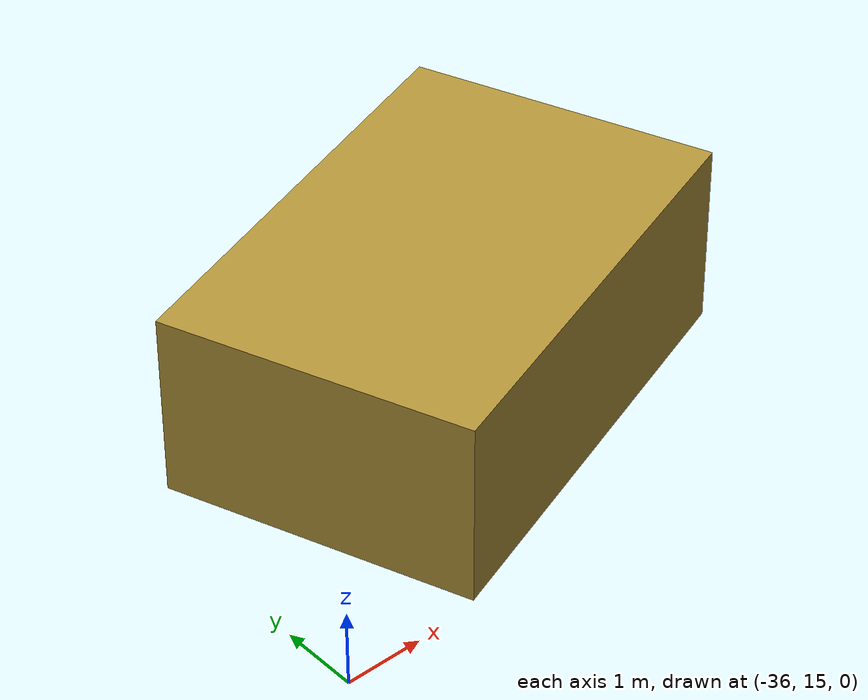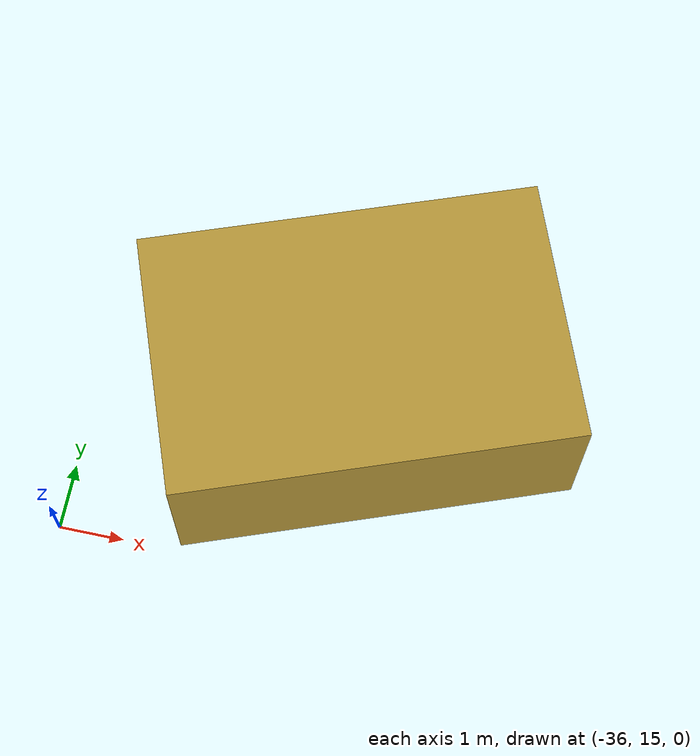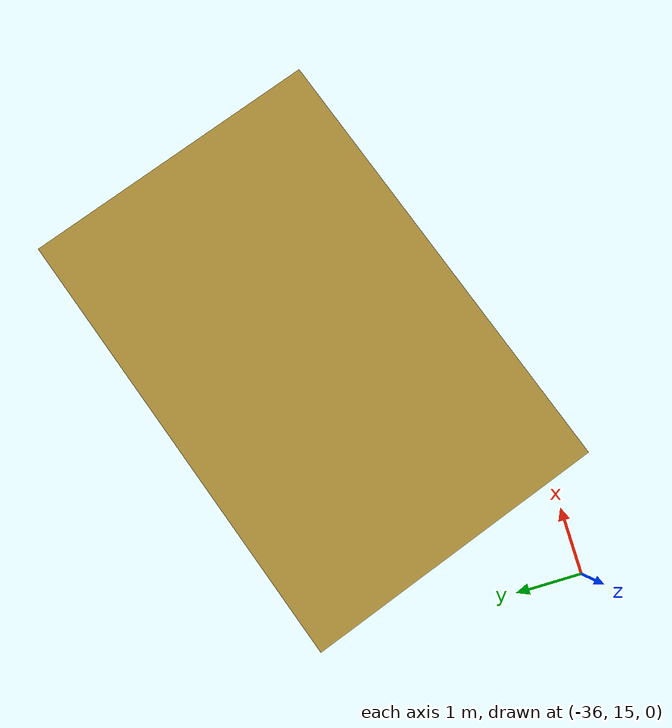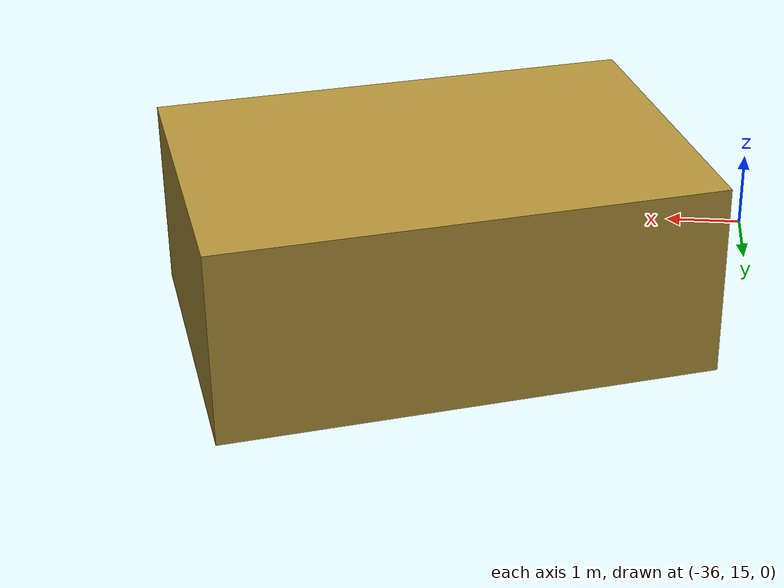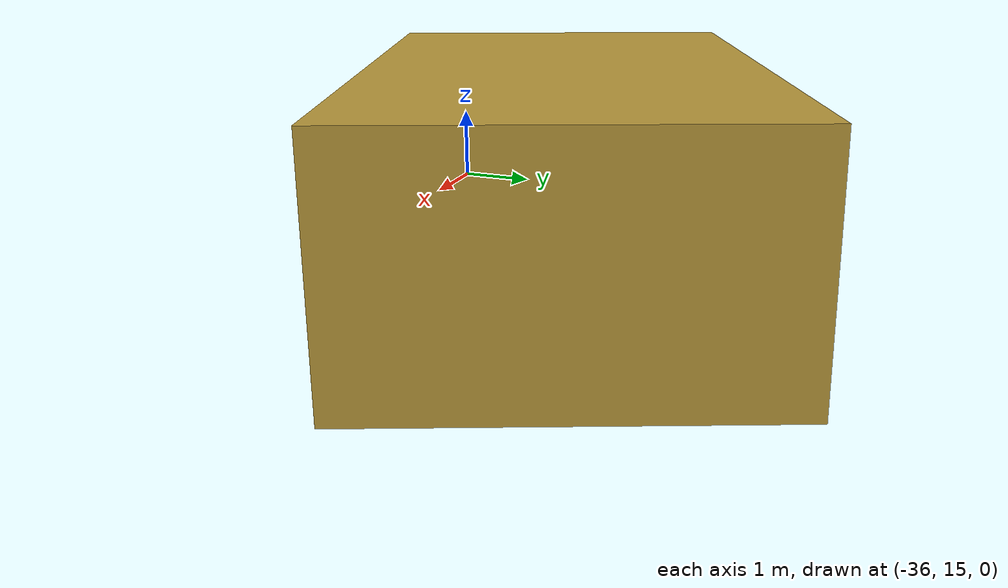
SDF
<sdf version="1.9">
 <world name="flat_rural_phototex_600m_noon_wind5ms">
  <model name="hay_block_a">
   <static>true</static>
   <pose>-32 18 1.2 0 0 0.35</pose>
   <link name="link">
    <collision name="collision"><geometry><box><size>6 4 2.4</size></box></geometry></collision>
    <visual name="visual">
     <geometry><box><size>6 4 2.4</size></box></geometry>
     <material>
      <ambient>0.700 0.580 0.220 1.000</ambient>
      <diffuse>0.700 0.580 0.220 1.000</diffuse>
      <specular>0.05 0.05 0.05 1</specular>
     </material>
    </visual>
   </link>
  </model>
 </world>
</sdf>
